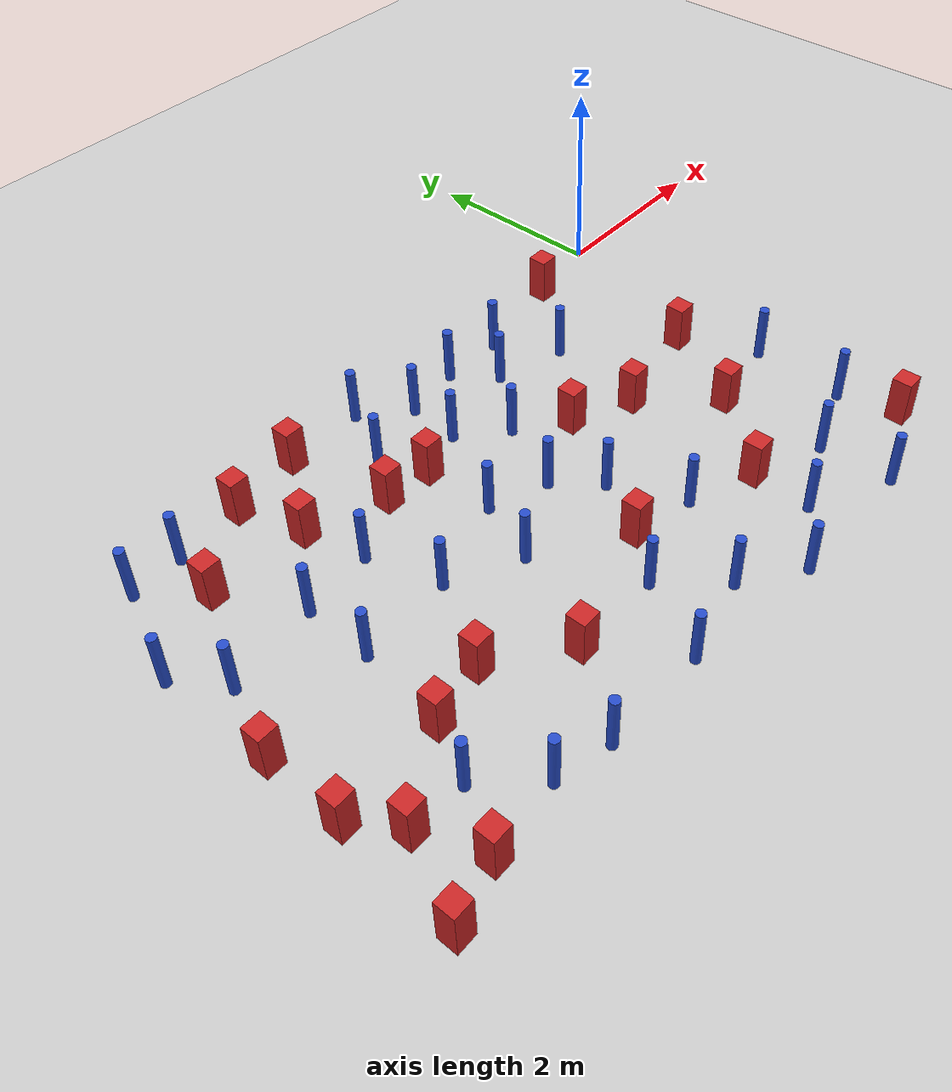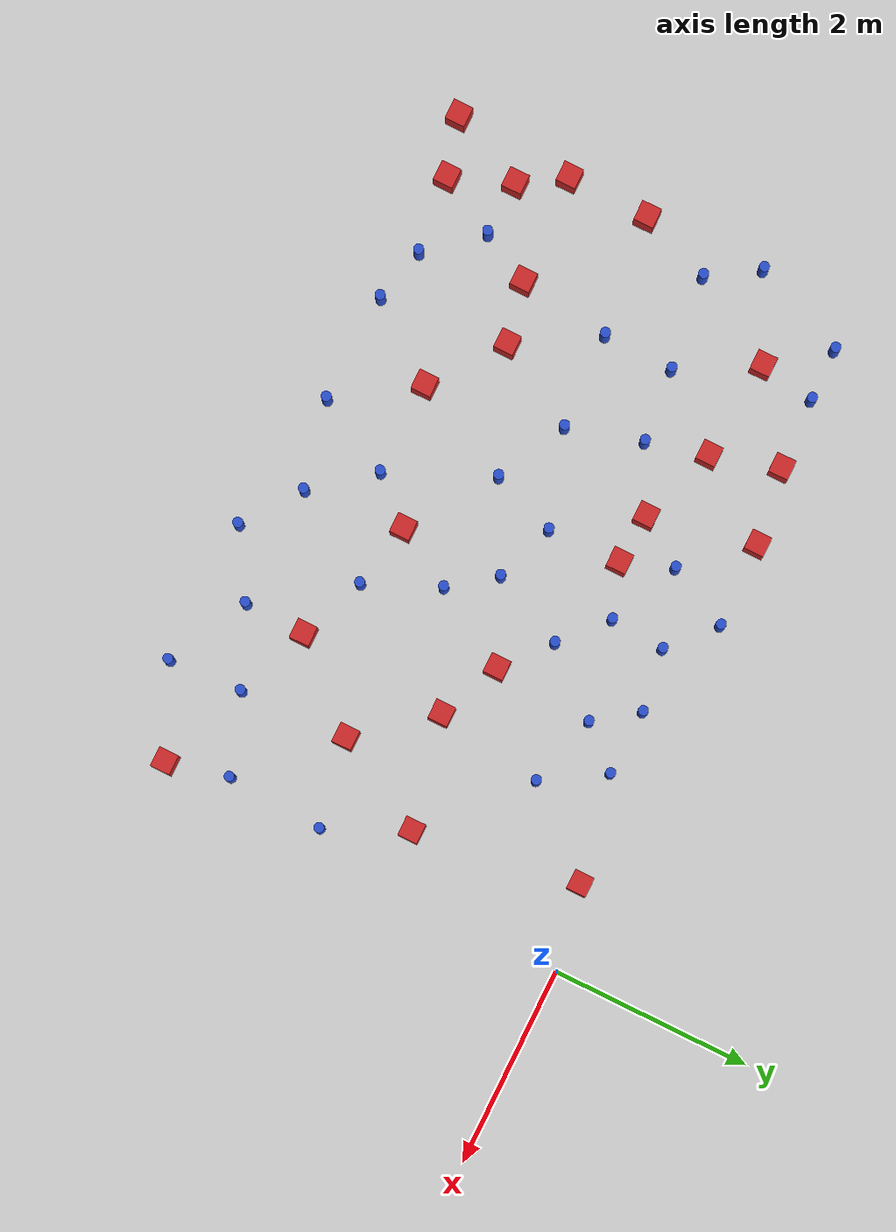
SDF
<sdf version="1.6">
 <world name="default">
  <model name="ground_plane">
   <static>1</static>
   <link name="link">
    <collision name="collision">
     <geometry><plane><normal>0 0 1</normal><size>100 100</size></plane></geometry>
     <surface><friction><ode><mu>100</mu><mu2>50</mu2></ode></friction></surface>
    </collision>
    <visual name="visual">
     <cast_shadows>0</cast_shadows>
     <geometry><plane><normal>0 0 1</normal><size>100 100</size></plane></geometry>
     <material>
      <ambient>1.0 1.0 1.0 1.0</ambient>
      <diffuse>0.8 0.8 0.8 1.0</diffuse>
      <specular>0.01 0.01 0.01 1.000000</specular>
     </material>
    </visual>
   </link>
  </model>
  <model name="square_post_obstacle0">
   <static>true</static>
   <pose>-6.79365163109 -2.37966467392 -6.11067671241e-07 -5.50515727128e-06 -8.79689657224e-07 2.37013304536e-05</pose>
   <link name="link">
    <pose>0 0 0.25 0 -0 0</pose>
    <inertial>
     <mass>100</mass>
     <inertia>
      <ixx>0.166667</ixx>
      <ixy>0</ixy>
      <ixz>0</ixz>
      <iyy>0.166667</iyy>
      <iyz>0</iyz>
      <izz>0.166667</izz>
     </inertia>
    </inertial>
    <collision name="collision"><geometry><box><size>.2 .2 .5</size></box></geometry></collision>
    <visual name="visual">
     <geometry><box><size>.2 .2 .5</size></box></geometry>
     <material>
      <script><name>Gazebo/Red</name><uri>file://media/materials/scripts/gazebo.material</uri></script>
     </material>
    </visual>
   </link>
  </model>
  <model name="square_post_obstacle2">
   <static>true</static>
   <pose>-4.2392469503 -1.13895897655 -6.11067671241e-07 -5.50515727128e-06 -8.79689657224e-07 2.37013304536e-05</pose>
   <link name="link">
    <pose>0 0 0.25 0 -0 0</pose>
    <inertial>
     <mass>100</mass>
     <inertia>
      <ixx>0.166667</ixx>
      <ixy>0</ixy>
      <ixz>0</ixz>
      <iyy>0.166667</iyy>
      <iyz>0</iyz>
      <izz>0.166667</izz>
     </inertia>
    </inertial>
    <collision name="collision"><geometry><box><size>.2 .2 .5</size></box></geometry></collision>
    <visual name="visual">
     <geometry><box><size>.2 .2 .5</size></box></geometry>
     <material>
      <script><name>Gazebo/Red</name><uri>file://media/materials/scripts/gazebo.material</uri></script>
     </material>
    </visual>
   </link>
  </model>
  <model name="square_post_obstacle5">
   <static>true</static>
   <pose>-0.597007786753 -1.81232864368 -6.11067671241e-07 -5.50515727128e-06 -8.79689657224e-07 2.37013304536e-05</pose>
   <link name="link">
    <pose>0 0 0.25 0 -0 0</pose>
    <inertial>
     <mass>100</mass>
     <inertia>
      <ixx>0.166667</ixx>
      <ixy>0</ixy>
      <ixz>0</ixz>
      <iyy>0.166667</iyy>
      <iyz>0</iyz>
      <izz>0.166667</izz>
     </inertia>
    </inertial>
    <collision name="collision"><geometry><box><size>.2 .2 .5</size></box></geometry></collision>
    <visual name="visual">
     <geometry><box><size>.2 .2 .5</size></box></geometry>
     <material>
      <script><name>Gazebo/Red</name><uri>file://media/materials/scripts/gazebo.material</uri></script>
     </material>
    </visual>
   </link>
  </model>
  <model name="square_post_obstacle7">
   <static>true</static>
   <pose>-4.43367953176 -3.56172683347 -6.11067671241e-07 -5.50515727128e-06 -8.79689657224e-07 2.37013304536e-05</pose>
   <link name="link">
    <pose>0 0 0.25 0 -0 0</pose>
    <inertial>
     <mass>100</mass>
     <inertia>
      <ixx>0.166667</ixx>
      <ixy>0</ixy>
      <ixz>0</ixz>
      <iyy>0.166667</iyy>
      <iyz>0</iyz>
      <izz>0.166667</izz>
     </inertia>
    </inertial>
    <collision name="collision"><geometry><box><size>.2 .2 .5</size></box></geometry></collision>
    <visual name="visual">
     <geometry><box><size>.2 .2 .5</size></box></geometry>
     <material>
      <script><name>Gazebo/Red</name><uri>file://media/materials/scripts/gazebo.material</uri></script>
     </material>
    </visual>
   </link>
  </model>
  <model name="pole_obstacle6">
   <static>true</static>
   <pose>-4.86197490382 -1.45907434639 -9.47619616065e-06 5.49618799738e-07 2.36310414071e-07 -1.55090534796e-07</pose>
   <link name="link">
    <pose>0 0 0.3 0 -0 0</pose>
    <inertial>
     <mass>1</mass>
     <inertia><ixx>0.145833</ixx><ixy>0</ixy><ixz>0</ixz><iyy>0.145833</iyy><iyz>0</iyz><izz>0.125</izz></inertia>
    </inertial>
    <collision name="collision">
     <geometry><cylinder><radius>0.05</radius><length>.6</length></cylinder></geometry>
    </collision>
    <visual name="visual">
     <geometry><cylinder><radius>0.05</radius><length>.6</length></cylinder></geometry>
     <material>
      <script><name>Gazebo/Blue</name><uri>file://media/materials/scripts/gazebo.material</uri></script>
     </material>
    </visual>
   </link>
  </model>
  <model name="square_post_obstacle16">
   <static>true</static>
   <pose>-6.29992434716 -4.24559506503 -6.11067671241e-07 -5.50515727128e-06 -8.79689657224e-07 2.37013304536e-05</pose>
   <link name="link">
    <pose>0 0 0.25 0 -0 0</pose>
    <inertial>
     <mass>100</mass>
     <inertia>
      <ixx>0.166667</ixx>
      <ixy>0</ixy>
      <ixz>0</ixz>
      <iyy>0.166667</iyy>
      <iyz>0</iyz>
      <izz>0.166667</izz>
     </inertia>
    </inertial>
    <collision name="collision"><geometry><box><size>.2 .2 .5</size></box></geometry></collision>
    <visual name="visual">
     <geometry><box><size>.2 .2 .5</size></box></geometry>
     <material>
      <script><name>Gazebo/Red</name><uri>file://media/materials/scripts/gazebo.material</uri></script>
     </material>
    </visual>
   </link>
  </model>
  <model name="pole_obstacle9">
   <static>true</static>
   <pose>-0.22944135859 -2.60055739995 -9.4761961606e-06 5.49618799729e-07 2.36310413995e-07 -1.55090534826e-07</pose>
   <link name="link">
    <pose>0 0 0.3 0 -0 0</pose>
    <inertial>
     <mass>1</mass>
     <inertia><ixx>0.145833</ixx><ixy>0</ixy><ixz>0</ixz><iyy>0.145833</iyy><iyz>0</iyz><izz>0.125</izz></inertia>
    </inertial>
    <collision name="collision">
     <geometry><cylinder><radius>0.05</radius><length>.6</length></cylinder></geometry>
    </collision>
    <visual name="visual">
     <geometry><cylinder><radius>0.05</radius><length>.6</length></cylinder></geometry>
     <material>
      <script><name>Gazebo/Blue</name><uri>file://media/materials/scripts/gazebo.material</uri></script>
     </material>
    </visual>
   </link>
  </model>
  <model name="square_post_obstacle17">
   <static>true</static>
   <pose>-6.01088247387 -0.774021291029 -6.11067671241e-07 -5.50515727128e-06 -8.79689657224e-07 2.37013304536e-05</pose>
   <link name="link">
    <pose>0 0 0.25 0 -0 0</pose>
    <inertial>
     <mass>100</mass>
     <inertia>
      <ixx>0.166667</ixx>
      <ixy>0</ixy>
      <ixz>0</ixz>
      <iyy>0.166667</iyy>
      <iyz>0</iyz>
      <izz>0.166667</izz>
     </inertia>
    </inertial>
    <collision name="collision"><geometry><box><size>.2 .2 .5</size></box></geometry></collision>
    <visual name="visual">
     <geometry><box><size>.2 .2 .5</size></box></geometry>
     <material>
      <script><name>Gazebo/Red</name><uri>file://media/materials/scripts/gazebo.material</uri></script>
     </material>
    </visual>
   </link>
  </model>
  <model name="square_post_obstacle19">
   <static>true</static>
   <pose>-6.87318926064 -4.40317310177 -6.11067671241e-07 -5.50515727128e-06 -8.79689657224e-07 2.37013304536e-05</pose>
   <link name="link">
    <pose>0 0 0.25 0 -0 0</pose>
    <inertial>
     <mass>100</mass>
     <inertia>
      <ixx>0.166667</ixx>
      <ixy>0</ixy>
      <ixz>0</ixz>
      <iyy>0.166667</iyy>
      <iyz>0</iyz>
      <izz>0.166667</izz>
     </inertia>
    </inertial>
    <collision name="collision"><geometry><box><size>.2 .2 .5</size></box></geometry></collision>
    <visual name="visual">
     <geometry><box><size>.2 .2 .5</size></box></geometry>
     <material>
      <script><name>Gazebo/Red</name><uri>file://media/materials/scripts/gazebo.material</uri></script>
     </material>
    </visual>
   </link>
  </model>
  <model name="pole_obstacle12">
   <static>true</static>
   <pose>-2.7788089134 -1.38238194871 -9.47619616065e-06 5.49618799737e-07 2.36310414072e-07 -1.55090534793e-07</pose>
   <link name="link">
    <pose>0 0 0.3 0 -0 0</pose>
    <inertial>
     <mass>1</mass>
     <inertia><ixx>0.145833</ixx><ixy>0</ixy><ixz>0</ixz><iyy>0.145833</iyy><iyz>0</iyz><izz>0.125</izz></inertia>
    </inertial>
    <collision name="collision">
     <geometry><cylinder><radius>0.05</radius><length>.6</length></cylinder></geometry>
    </collision>
    <visual name="visual">
     <geometry><cylinder><radius>0.05</radius><length>.6</length></cylinder></geometry>
     <material>
      <script><name>Gazebo/Blue</name><uri>file://media/materials/scripts/gazebo.material</uri></script>
     </material>
    </visual>
   </link>
  </model>
  <model name="pole_obstacle16">
   <static>true</static>
   <pose>-3.03292474364 -4.14397982921 -9.47619616065e-06 5.49618799738e-07 2.3631041406e-07 -1.55090534801e-07</pose>
   <link name="link">
    <pose>0 0 0.3 0 -0 0</pose>
    <inertial>
     <mass>1</mass>
     <inertia><ixx>0.145833</ixx><ixy>0</ixy><ixz>0</ixz><iyy>0.145833</iyy><iyz>0</iyz><izz>0.125</izz></inertia>
    </inertial>
    <collision name="collision">
     <geometry><cylinder><radius>0.05</radius><length>.6</length></cylinder></geometry>
    </collision>
    <visual name="visual">
     <geometry><cylinder><radius>0.05</radius><length>.6</length></cylinder></geometry>
     <material>
      <script><name>Gazebo/Blue</name><uri>file://media/materials/scripts/gazebo.material</uri></script>
     </material>
    </visual>
   </link>
  </model>
  <model name="square_post_obstacle29">
   <static>true</static>
   <pose>-2.330576154 -1.76923611271 -6.11067671241e-07 -5.50515727128e-06 -8.79689657224e-07 2.37013304536e-05</pose>
   <link name="link">
    <pose>0 0 0.25 0 -0 0</pose>
    <inertial>
     <mass>100</mass>
     <inertia>
      <ixx>0.166667</ixx>
      <ixy>0</ixy>
      <ixz>0</ixz>
      <iyy>0.166667</iyy>
      <iyz>0</iyz>
      <izz>0.166667</izz>
     </inertia>
    </inertial>
    <collision name="collision"><geometry><box><size>.2 .2 .5</size></box></geometry></collision>
    <visual name="visual">
     <geometry><box><size>.2 .2 .5</size></box></geometry>
     <material>
      <script><name>Gazebo/Red</name><uri>file://media/materials/scripts/gazebo.material</uri></script>
     </material>
    </visual>
   </link>
  </model>
  <model name="square_post_obstacle32">
   <static>true</static>
   <pose>-0.154091676477 -4.18583389354 -6.11067671241e-07 -5.50515727128e-06 -8.79689657224e-07 2.37013304536e-05</pose>
   <link name="link">
    <pose>0 0 0.25 0 -0 0</pose>
    <inertial>
     <mass>100</mass>
     <inertia>
      <ixx>0.166667</ixx>
      <ixy>0</ixy>
      <ixz>0</ixz>
      <iyy>0.166667</iyy>
      <iyz>0</iyz>
      <izz>0.166667</izz>
     </inertia>
    </inertial>
    <collision name="collision"><geometry><box><size>.2 .2 .5</size></box></geometry></collision>
    <visual name="visual">
     <geometry><box><size>.2 .2 .5</size></box></geometry>
     <material>
      <script><name>Gazebo/Red</name><uri>file://media/materials/scripts/gazebo.material</uri></script>
     </material>
    </visual>
   </link>
  </model>
  <model name="pole_obstacle28">
   <static>true</static>
   <pose>-0.289785393701 -3.56984879872 -9.47619616065e-06 5.49618799738e-07 2.36310414071e-07 -1.55090534795e-07</pose>
   <link name="link">
    <pose>0 0 0.3 0 -0 0</pose>
    <inertial>
     <mass>1</mass>
     <inertia><ixx>0.145833</ixx><ixy>0</ixy><ixz>0</ixz><iyy>0.145833</iyy><iyz>0</iyz><izz>0.125</izz></inertia>
    </inertial>
    <collision name="collision">
     <geometry><cylinder><radius>0.05</radius><length>.6</length></cylinder></geometry>
    </collision>
    <visual name="visual">
     <geometry><cylinder><radius>0.05</radius><length>.6</length></cylinder></geometry>
     <material>
      <script><name>Gazebo/Blue</name><uri>file://media/materials/scripts/gazebo.material</uri></script>
     </material>
    </visual>
   </link>
  </model>
  <model name="pole_obstacle32">
   <static>true</static>
   <pose>-6.43493447278 -0.231366532848 -9.47619616065e-06 5.49618799737e-07 2.36310414066e-07 -1.55090534799e-07</pose>
   <link name="link">
    <pose>0 0 0.3 0 -0 0</pose>
    <inertial>
     <mass>1</mass>
     <inertia><ixx>0.145833</ixx><ixy>0</ixy><ixz>0</ixz><iyy>0.145833</iyy><iyz>0</iyz><izz>0.125</izz></inertia>
    </inertial>
    <collision name="collision">
     <geometry><cylinder><radius>0.05</radius><length>.6</length></cylinder></geometry>
    </collision>
    <visual name="visual">
     <geometry><cylinder><radius>0.05</radius><length>.6</length></cylinder></geometry>
     <material>
      <script><name>Gazebo/Blue</name><uri>file://media/materials/scripts/gazebo.material</uri></script>
     </material>
    </visual>
   </link>
  </model>
  <model name="pole_obstacle34">
   <static>true</static>
   <pose>-2.47145228042 -3.27846157827 -9.47619616065e-06 5.49618799737e-07 2.36310414051e-07 -1.55090534807e-07</pose>
   <link name="link">
    <pose>0 0 0.3 0 -0 0</pose>
    <inertial>
     <mass>1</mass>
     <inertia><ixx>0.145833</ixx><ixy>0</ixy><ixz>0</ixz><iyy>0.145833</iyy><iyz>0</iyz><izz>0.125</izz></inertia>
    </inertial>
    <collision name="collision">
     <geometry><cylinder><radius>0.05</radius><length>.6</length></cylinder></geometry>
    </collision>
    <visual name="visual">
     <geometry><cylinder><radius>0.05</radius><length>.6</length></cylinder></geometry>
     <material>
      <script><name>Gazebo/Blue</name><uri>file://media/materials/scripts/gazebo.material</uri></script>
     </material>
    </visual>
   </link>
  </model>
  <model name="pole_obstacle35">
   <static>true</static>
   <pose>-3.91542298515 -0.672027228942 -9.47619616065e-06 5.49618799738e-07 2.36310414075e-07 -1.55090534793e-07</pose>
   <link name="link">
    <pose>0 0 0.3 0 -0 0</pose>
    <inertial>
     <mass>1</mass>
     <inertia><ixx>0.145833</ixx><ixy>0</ixy><ixz>0</ixz><iyy>0.145833</iyy><iyz>0</iyz><izz>0.125</izz></inertia>
    </inertial>
    <collision name="collision">
     <geometry><cylinder><radius>0.05</radius><length>.6</length></cylinder></geometry>
    </collision>
    <visual name="visual">
     <geometry><cylinder><radius>0.05</radius><length>.6</length></cylinder></geometry>
     <material>
      <script><name>Gazebo/Blue</name><uri>file://media/materials/scripts/gazebo.material</uri></script>
     </material>
    </visual>
   </link>
  </model>
  <model name="pole_obstacle37">
   <static>true</static>
   <pose>-2.25235040483 -0.76699254131 -9.47619616065e-06 5.49618799738e-07 2.36310414075e-07 -1.55090534793e-07</pose>
   <link name="link">
    <pose>0 0 0.3 0 -0 0</pose>
    <inertial>
     <mass>1</mass>
     <inertia><ixx>0.145833</ixx><ixy>0</ixy><ixz>0</ixz><iyy>0.145833</iyy><iyz>0</iyz><izz>0.125</izz></inertia>
    </inertial>
    <collision name="collision">
     <geometry><cylinder><radius>0.05</radius><length>.6</length></cylinder></geometry>
    </collision>
    <visual name="visual">
     <geometry><cylinder><radius>0.05</radius><length>.6</length></cylinder></geometry>
     <material>
      <script><name>Gazebo/Blue</name><uri>file://media/materials/scripts/gazebo.material</uri></script>
     </material>
    </visual>
   </link>
  </model>
  <model name="pole_obstacle42">
   <static>true</static>
   <pose>-3.50284827533 -3.57272188242 -9.47619616065e-06 5.49618799737e-07 2.36310414067e-07 -1.55090534797e-07</pose>
   <link name="link">
    <pose>0 0 0.3 0 -0 0</pose>
    <inertial>
     <mass>1</mass>
     <inertia><ixx>0.145833</ixx><ixy>0</ixy><ixz>0</ixz><iyy>0.145833</iyy><iyz>0</iyz><izz>0.125</izz></inertia>
    </inertial>
    <collision name="collision">
     <geometry><cylinder><radius>0.05</radius><length>.6</length></cylinder></geometry>
    </collision>
    <visual name="visual">
     <geometry><cylinder><radius>0.05</radius><length>.6</length></cylinder></geometry>
     <material>
      <script><name>Gazebo/Blue</name><uri>file://media/materials/scripts/gazebo.material</uri></script>
     </material>
    </visual>
   </link>
  </model>
  <model name="square_post_obstacle40">
   <static>true</static>
   <pose>-6.53275924271 -3.64013052951 -6.11067671241e-07 -5.50515727128e-06 -8.79689657224e-07 2.37013304536e-05</pose>
   <link name="link">
    <pose>0 0 0.25 0 -0 0</pose>
    <inertial>
     <mass>100</mass>
     <inertia>
      <ixx>0.166667</ixx>
      <ixy>0</ixy>
      <ixz>0</ixz>
      <iyy>0.166667</iyy>
      <iyz>0</iyz>
      <izz>0.166667</izz>
     </inertia>
    </inertial>
    <collision name="collision"><geometry><box><size>.2 .2 .5</size></box></geometry></collision>
    <visual name="visual">
     <geometry><box><size>.2 .2 .5</size></box></geometry>
     <material>
      <script><name>Gazebo/Red</name><uri>file://media/materials/scripts/gazebo.material</uri></script>
     </material>
    </visual>
   </link>
  </model>
  <model name="square_post_obstacle54">
   <static>true</static>
   <pose>-1.11307281681 -2.75795405265 -6.11067671241e-07 -5.50515727128e-06 -8.79689657224e-07 2.37013304536e-05</pose>
   <link name="link">
    <pose>0 0 0.25 0 -0 0</pose>
    <inertial>
     <mass>100</mass>
     <inertia>
      <ixx>0.166667</ixx>
      <ixy>0</ixy>
      <ixz>0</ixz>
      <iyy>0.166667</iyy>
      <iyz>0</iyz>
      <izz>0.166667</izz>
     </inertia>
    </inertial>
    <collision name="collision"><geometry><box><size>.2 .2 .5</size></box></geometry></collision>
    <visual name="visual">
     <geometry><box><size>.2 .2 .5</size></box></geometry>
     <material>
      <script><name>Gazebo/Red</name><uri>file://media/materials/scripts/gazebo.material</uri></script>
     </material>
    </visual>
   </link>
  </model>
  <model name="square_post_obstacle56">
   <static>true</static>
   <pose>-3.73964808594 -1.17302098692 -6.11067671241e-07 -5.50515727128e-06 -8.79689657224e-07 2.37013304536e-05</pose>
   <link name="link">
    <pose>0 0 0.25 0 -0 0</pose>
    <inertial>
     <mass>100</mass>
     <inertia>
      <ixx>0.166667</ixx>
      <ixy>0</ixy>
      <ixz>0</ixz>
      <iyy>0.166667</iyy>
      <iyz>0</iyz>
      <izz>0.166667</izz>
     </inertia>
    </inertial>
    <collision name="collision"><geometry><box><size>.2 .2 .5</size></box></geometry></collision>
    <visual name="visual">
     <geometry><box><size>.2 .2 .5</size></box></geometry>
     <material>
      <script><name>Gazebo/Red</name><uri>file://media/materials/scripts/gazebo.material</uri></script>
     </material>
    </visual>
   </link>
  </model>
  <model name="pole_obstacle56">
   <static>true</static>
   <pose>-3.71279661261 -1.90455418314 -9.47619616065e-06 5.49618799737e-07 2.3631041403e-07 -1.5509053482e-07</pose>
   <link name="link">
    <pose>0 0 0.3 0 -0 0</pose>
    <inertial>
     <mass>1</mass>
     <inertia><ixx>0.145833</ixx><ixy>0</ixy><ixz>0</ixz><iyy>0.145833</iyy><iyz>0</iyz><izz>0.125</izz></inertia>
    </inertial>
    <collision name="collision">
     <geometry><cylinder><radius>0.05</radius><length>.6</length></cylinder></geometry>
    </collision>
    <visual name="visual">
     <geometry><cylinder><radius>0.05</radius><length>.6</length></cylinder></geometry>
     <material>
      <script><name>Gazebo/Blue</name><uri>file://media/materials/scripts/gazebo.material</uri></script>
     </material>
    </visual>
   </link>
  </model>
  <model name="pole_obstacle63">
   <static>true</static>
   <pose>-1.02903352181 -4.57635606215 -9.47619616065e-06 5.49618799737e-07 2.36310414062e-07 -1.55090534799e-07</pose>
   <link name="link">
    <pose>0 0 0.3 0 -0 0</pose>
    <inertial>
     <mass>1</mass>
     <inertia><ixx>0.145833</ixx><ixy>0</ixy><ixz>0</ixz><iyy>0.145833</iyy><iyz>0</iyz><izz>0.125</izz></inertia>
    </inertial>
    <collision name="collision">
     <geometry><cylinder><radius>0.05</radius><length>.6</length></cylinder></geometry>
    </collision>
    <visual name="visual">
     <geometry><cylinder><radius>0.05</radius><length>.6</length></cylinder></geometry>
     <material>
      <script><name>Gazebo/Blue</name><uri>file://media/materials/scripts/gazebo.material</uri></script>
     </material>
    </visual>
   </link>
  </model>
  <model name="square_post_obstacle72">
   <static>true</static>
   <pose>-5.21378145394 -0.18885696707 -6.11067671241e-07 -5.50515727128e-06 -8.79689657224e-07 2.37013304536e-05</pose>
   <link name="link">
    <pose>0 0 0.25 0 -0 0</pose>
    <inertial>
     <mass>100</mass>
     <inertia>
      <ixx>0.166667</ixx>
      <ixy>0</ixy>
      <ixz>0</ixz>
      <iyy>0.166667</iyy>
      <iyz>0</iyz>
      <izz>0.166667</izz>
     </inertia>
    </inertial>
    <collision name="collision"><geometry><box><size>.2 .2 .5</size></box></geometry></collision>
    <visual name="visual">
     <geometry><box><size>.2 .2 .5</size></box></geometry>
     <material>
      <script><name>Gazebo/Red</name><uri>file://media/materials/scripts/gazebo.material</uri></script>
     </material>
    </visual>
   </link>
  </model>
  <model name="pole_obstacle75">
   <static>true</static>
   <pose>-3.90321730316 -4.3350528986 -9.4761961606e-06 5.49618799729e-07 2.36310414006e-07 -1.55090534822e-07</pose>
   <link name="link">
    <pose>0 0 0.3 0 -0 0</pose>
    <inertial>
     <mass>1</mass>
     <inertia><ixx>0.145833</ixx><ixy>0</ixy><ixz>0</ixz><iyy>0.145833</iyy><iyz>0</iyz><izz>0.125</izz></inertia>
    </inertial>
    <collision name="collision">
     <geometry><cylinder><radius>0.05</radius><length>.6</length></cylinder></geometry>
    </collision>
    <visual name="visual">
     <geometry><cylinder><radius>0.05</radius><length>.6</length></cylinder></geometry>
     <material>
      <script><name>Gazebo/Blue</name><uri>file://media/materials/scripts/gazebo.material</uri></script>
     </material>
    </visual>
   </link>
  </model>
  <model name="pole_obstacle79">
   <static>true</static>
   <pose>-4.98861191059 -4.30408736941 -9.47619616065e-06 5.49618799737e-07 2.36310414037e-07 -1.55090534814e-07</pose>
   <link name="link">
    <pose>0 0 0.3 0 -0 0</pose>
    <inertial>
     <mass>1</mass>
     <inertia><ixx>0.145833</ixx><ixy>0</ixy><ixz>0</ixz><iyy>0.145833</iyy><iyz>0</iyz><izz>0.125</izz></inertia>
    </inertial>
    <collision name="collision">
     <geometry><cylinder><radius>0.05</radius><length>.6</length></cylinder></geometry>
    </collision>
    <visual name="visual">
     <geometry><cylinder><radius>0.05</radius><length>.6</length></cylinder></geometry>
     <material>
      <script><name>Gazebo/Blue</name><uri>file://media/materials/scripts/gazebo.material</uri></script>
     </material>
    </visual>
   </link>
  </model>
  <model name="pole_obstacle83">
   <static>true</static>
   <pose>-1.06622155213 -3.83765173646 -9.47619616065e-06 5.49618799737e-07 2.36310414062e-07 -1.55090534798e-07</pose>
   <link name="link">
    <pose>0 0 0.3 0 -0 0</pose>
    <inertial>
     <mass>1</mass>
     <inertia><ixx>0.145833</ixx><ixy>0</ixy><ixz>0</ixz><iyy>0.145833</iyy><iyz>0</iyz><izz>0.125</izz></inertia>
    </inertial>
    <collision name="collision">
     <geometry><cylinder><radius>0.05</radius><length>.6</length></cylinder></geometry>
    </collision>
    <visual name="visual">
     <geometry><cylinder><radius>0.05</radius><length>.6</length></cylinder></geometry>
     <material>
      <script><name>Gazebo/Blue</name><uri>file://media/materials/scripts/gazebo.material</uri></script>
     </material>
    </visual>
   </link>
  </model>
  <model name="pole_obstacle84">
   <static>true</static>
   <pose>-3.61444891288 -0.0518626555881 -9.47619616065e-06 5.49618799738e-07 2.36310414077e-07 -1.55090534792e-07</pose>
   <link name="link">
    <pose>0 0 0.3 0 -0 0</pose>
    <inertial>
     <mass>1</mass>
     <inertia><ixx>0.145833</ixx><ixy>0</ixy><ixz>0</ixz><iyy>0.145833</iyy><iyz>0</iyz><izz>0.125</izz></inertia>
    </inertial>
    <collision name="collision">
     <geometry><cylinder><radius>0.05</radius><length>.6</length></cylinder></geometry>
    </collision>
    <visual name="visual">
     <geometry><cylinder><radius>0.05</radius><length>.6</length></cylinder></geometry>
     <material>
      <script><name>Gazebo/Blue</name><uri>file://media/materials/scripts/gazebo.material</uri></script>
     </material>
    </visual>
   </link>
  </model>
  <model name="pole_obstacle86">
   <static>true</static>
   <pose>-2.55986904602 -0.350726312966 -9.47619616065e-06 5.49618799738e-07 2.36310414074e-07 -1.55090534794e-07</pose>
   <link name="link">
    <pose>0 0 0.3 0 -0 0</pose>
    <inertial>
     <mass>1</mass>
     <inertia><ixx>0.145833</ixx><ixy>0</ixy><ixz>0</ixz><iyy>0.145833</iyy><iyz>0</iyz><izz>0.125</izz></inertia>
    </inertial>
    <collision name="collision">
     <geometry><cylinder><radius>0.05</radius><length>.6</length></cylinder></geometry>
    </collision>
    <visual name="visual">
     <geometry><cylinder><radius>0.05</radius><length>.6</length></cylinder></geometry>
     <material>
      <script><name>Gazebo/Blue</name><uri>file://media/materials/scripts/gazebo.material</uri></script>
     </material>
    </visual>
   </link>
  </model>
  <model name="pole_obstacle89">
   <static>true</static>
   <pose>-4.65138364975 -2.20225454791 -9.47619616065e-06 5.49618799738e-07 2.36310414051e-07 -1.55090534805e-07</pose>
   <link name="link">
    <pose>0 0 0.3 0 -0 0</pose>
    <inertial>
     <mass>1</mass>
     <inertia><ixx>0.145833</ixx><ixy>0</ixy><ixz>0</ixz><iyy>0.145833</iyy><iyz>0</iyz><izz>0.125</izz></inertia>
    </inertial>
    <collision name="collision">
     <geometry><cylinder><radius>0.05</radius><length>.6</length></cylinder></geometry>
    </collision>
    <visual name="visual">
     <geometry><cylinder><radius>0.05</radius><length>.6</length></cylinder></geometry>
     <material>
      <script><name>Gazebo/Blue</name><uri>file://media/materials/scripts/gazebo.material</uri></script>
     </material>
    </visual>
   </link>
  </model>
  <model name="pole_obstacle96">
   <static>true</static>
   <pose>-1.90054986948 -0.369424221788 -9.47619616065e-06 5.49618799737e-07 2.36310414064e-07 -1.55090534799e-07</pose>
   <link name="link">
    <pose>0 0 0.3 0 -0 0</pose>
    <inertial>
     <mass>1</mass>
     <inertia><ixx>0.145833</ixx><ixy>0</ixy><ixz>0</ixz><iyy>0.145833</iyy><iyz>0</iyz><izz>0.125</izz></inertia>
    </inertial>
    <collision name="collision">
     <geometry><cylinder><radius>0.05</radius><length>.6</length></cylinder></geometry>
    </collision>
    <visual name="visual">
     <geometry><cylinder><radius>0.05</radius><length>.6</length></cylinder></geometry>
     <material>
      <script><name>Gazebo/Blue</name><uri>file://media/materials/scripts/gazebo.material</uri></script>
     </material>
    </visual>
   </link>
  </model>
  <model name="square_post_obstacle110">
   <static>true</static>
   <pose>-5.02109420908 -0.860228562525 -6.11067671241e-07 -5.50515727128e-06 -8.79689657224e-07 2.37013304536e-05</pose>
   <link name="link">
    <pose>0 0 0.25 0 -0 0</pose>
    <inertial>
     <mass>100</mass>
     <inertia>
      <ixx>0.166667</ixx>
      <ixy>0</ixy>
      <ixz>0</ixz>
      <iyy>0.166667</iyy>
      <iyz>0</iyz>
      <izz>0.166667</izz>
     </inertia>
    </inertial>
    <collision name="collision"><geometry><box><size>.2 .2 .5</size></box></geometry></collision>
    <visual name="visual">
     <geometry><box><size>.2 .2 .5</size></box></geometry>
     <material>
      <script><name>Gazebo/Red</name><uri>file://media/materials/scripts/gazebo.material</uri></script>
     </material>
    </visual>
   </link>
  </model>
  <model name="pole_obstacle121">
   <static>true</static>
   <pose>-5.60375531675 -2.24166722646 -9.47619616065e-06 5.49618799738e-07 2.36310414051e-07 -1.55090534805e-07</pose>
   <link name="link">
    <pose>0 0 0.3 0 -0 0</pose>
    <inertial>
     <mass>1</mass>
     <inertia><ixx>0.145833</ixx><ixy>0</ixy><ixz>0</ixz><iyy>0.145833</iyy><iyz>0</iyz><izz>0.125</izz></inertia>
    </inertial>
    <collision name="collision">
     <geometry><cylinder><radius>0.05</radius><length>.6</length></cylinder></geometry>
    </collision>
    <visual name="visual">
     <geometry><cylinder><radius>0.05</radius><length>.6</length></cylinder></geometry>
     <material>
      <script><name>Gazebo/Blue</name><uri>file://media/materials/scripts/gazebo.material</uri></script>
     </material>
    </visual>
   </link>
  </model>
  <model name="pole_obstacle122">
   <static>true</static>
   <pose>-5.98223646714 -3.66260465675 -9.47619616065e-06 5.49618799738e-07 2.36310414051e-07 -1.55090534805e-07</pose>
   <link name="link">
    <pose>0 0 0.3 0 -0 0</pose>
    <inertial>
     <mass>1</mass>
     <inertia><ixx>0.145833</ixx><ixy>0</ixy><ixz>0</ixz><iyy>0.145833</iyy><iyz>0</iyz><izz>0.125</izz></inertia>
    </inertial>
    <collision name="collision">
     <geometry><cylinder><radius>0.05</radius><length>.6</length></cylinder></geometry>
    </collision>
    <visual name="visual">
     <geometry><cylinder><radius>0.05</radius><length>.6</length></cylinder></geometry>
     <material>
      <script><name>Gazebo/Blue</name><uri>file://media/materials/scripts/gazebo.material</uri></script>
     </material>
    </visual>
   </link>
  </model>
  <model name="square_post_obstacle124">
   <static>true</static>
   <pose>-4.45957317774 -0.0765150532961 -6.11067671241e-07 -5.50515727128e-06 -8.79689657224e-07 2.37013304536e-05</pose>
   <link name="link">
    <pose>0 0 0.25 0 -0 0</pose>
    <inertial>
     <mass>100</mass>
     <inertia>
      <ixx>0.166667</ixx>
      <ixy>0</ixy>
      <ixz>0</ixz>
      <iyy>0.166667</iyy>
      <iyz>0</iyz>
      <izz>0.166667</izz>
     </inertia>
    </inertial>
    <collision name="collision"><geometry><box><size>.2 .2 .5</size></box></geometry></collision>
    <visual name="visual">
     <geometry><box><size>.2 .2 .5</size></box></geometry>
     <material>
      <script><name>Gazebo/Red</name><uri>file://media/materials/scripts/gazebo.material</uri></script>
     </material>
    </visual>
   </link>
  </model>
  <model name="pole_obstacle140">
   <static>true</static>
   <pose>-1.82941657323 -4.1632960777 -9.47619616065e-06 5.49618799737e-07 2.36310414061e-07 -1.550905348e-07</pose>
   <link name="link">
    <pose>0 0 0.3 0 -0 0</pose>
    <inertial>
     <mass>1</mass>
     <inertia><ixx>0.145833</ixx><ixy>0</ixy><ixz>0</ixz><iyy>0.145833</iyy><iyz>0</iyz><izz>0.125</izz></inertia>
    </inertial>
    <collision name="collision">
     <geometry><cylinder><radius>0.05</radius><length>.6</length></cylinder></geometry>
    </collision>
    <visual name="visual">
     <geometry><cylinder><radius>0.05</radius><length>.6</length></cylinder></geometry>
     <material>
      <script><name>Gazebo/Blue</name><uri>file://media/materials/scripts/gazebo.material</uri></script>
     </material>
    </visual>
   </link>
  </model>
  <model name="square_post_obstacle131">
   <static>true</static>
   <pose>-0.846398369994 -0.166675467409 -6.11067671241e-07 -5.50515727128e-06 -8.79689657224e-07 2.37013304536e-05</pose>
   <link name="link">
    <pose>0 0 0.25 0 -0 0</pose>
    <inertial>
     <mass>100</mass>
     <inertia>
      <ixx>0.166667</ixx>
      <ixy>0</ixy>
      <ixz>0</ixz>
      <iyy>0.166667</iyy>
      <iyz>0</iyz>
      <izz>0.166667</izz>
     </inertia>
    </inertial>
    <collision name="collision"><geometry><box><size>.2 .2 .5</size></box></geometry></collision>
    <visual name="visual">
     <geometry><box><size>.2 .2 .5</size></box></geometry>
     <material>
      <script><name>Gazebo/Red</name><uri>file://media/materials/scripts/gazebo.material</uri></script>
     </material>
    </visual>
   </link>
  </model>
  <model name="pole_obstacle144">
   <static>true</static>
   <pose>-3.21516559284 -0.993689086344 -9.47619616076e-06 5.49618799749e-07 2.36310414112e-07 -1.55090534783e-07</pose>
   <link name="link">
    <pose>0 0 0.3 0 -0 0</pose>
    <inertial>
     <mass>1</mass>
     <inertia><ixx>0.145833</ixx><ixy>0</ixy><ixz>0</ixz><iyy>0.145833</iyy><iyz>0</iyz><izz>0.125</izz></inertia>
    </inertial>
    <collision name="collision">
     <geometry><cylinder><radius>0.05</radius><length>.6</length></cylinder></geometry>
    </collision>
    <visual name="visual">
     <geometry><cylinder><radius>0.05</radius><length>.6</length></cylinder></geometry>
     <material>
      <script><name>Gazebo/Blue</name><uri>file://media/materials/scripts/gazebo.material</uri></script>
     </material>
    </visual>
   </link>
  </model>
  <model name="pole_obstacle146">
   <static>true</static>
   <pose>-3.95660840421 -2.55215619656 -9.47619616065e-06 5.49618799738e-07 2.36310414039e-07 -1.55090534813e-07</pose>
   <link name="link">
    <pose>0 0 0.3 0 -0 0</pose>
    <inertial>
     <mass>1</mass>
     <inertia><ixx>0.145833</ixx><ixy>0</ixy><ixz>0</ixz><iyy>0.145833</iyy><iyz>0</iyz><izz>0.125</izz></inertia>
    </inertial>
    <collision name="collision">
     <geometry><cylinder><radius>0.05</radius><length>.6</length></cylinder></geometry>
    </collision>
    <visual name="visual">
     <geometry><cylinder><radius>0.05</radius><length>.6</length></cylinder></geometry>
     <material>
      <script><name>Gazebo/Blue</name><uri>file://media/materials/scripts/gazebo.material</uri></script>
     </material>
    </visual>
   </link>
  </model>
  <model name="pole_obstacle150">
   <static>true</static>
   <pose>-2.46930469117 -4.5565074449 -9.47619616065e-06 5.49618799738e-07 2.3631041406e-07 -1.55090534801e-07</pose>
   <link name="link">
    <pose>0 0 0.3 0 -0 0</pose>
    <inertial>
     <mass>1</mass>
     <inertia><ixx>0.145833</ixx><ixy>0</ixy><ixz>0</ixz><iyy>0.145833</iyy><iyz>0</iyz><izz>0.125</izz></inertia>
    </inertial>
    <collision name="collision">
     <geometry><cylinder><radius>0.05</radius><length>.6</length></cylinder></geometry>
    </collision>
    <visual name="visual">
     <geometry><cylinder><radius>0.05</radius><length>.6</length></cylinder></geometry>
     <material>
      <script><name>Gazebo/Blue</name><uri>file://media/materials/scripts/gazebo.material</uri></script>
     </material>
    </visual>
   </link>
  </model>
  <model name="pole_obstacle155">
   <static>true</static>
   <pose>-1.53245986421 -0.966651109185 -9.47619616065e-06 5.49618799737e-07 2.3631041406e-07 -1.550905348e-07</pose>
   <link name="link">
    <pose>0 0 0.3 0 -0 0</pose>
    <inertial>
     <mass>1</mass>
     <inertia><ixx>0.145833</ixx><ixy>0</ixy><ixz>0</ixz><iyy>0.145833</iyy><iyz>0</iyz><izz>0.125</izz></inertia>
    </inertial>
    <collision name="collision">
     <geometry><cylinder><radius>0.05</radius><length>.6</length></cylinder></geometry>
    </collision>
    <visual name="visual">
     <geometry><cylinder><radius>0.05</radius><length>.6</length></cylinder></geometry>
     <material>
      <script><name>Gazebo/Blue</name><uri>file://media/materials/scripts/gazebo.material</uri></script>
     </material>
    </visual>
   </link>
  </model>
  <model name="square_post_obstacle148">
   <static>true</static>
   <pose>-5.73062093538 -3.16054138618 -6.11067671241e-07 -5.50515727128e-06 -8.79689657224e-07 2.37013304536e-05</pose>
   <link name="link">
    <pose>0 0 0.25 0 -0 0</pose>
    <inertial>
     <mass>100</mass>
     <inertia>
      <ixx>0.166667</ixx>
      <ixy>0</ixy>
      <ixz>0</ixz>
      <iyy>0.166667</iyy>
      <iyz>0</iyz>
      <izz>0.166667</izz>
     </inertia>
    </inertial>
    <collision name="collision"><geometry><box><size>.2 .2 .5</size></box></geometry></collision>
    <visual name="visual">
     <geometry><box><size>.2 .2 .5</size></box></geometry>
     <material>
      <script><name>Gazebo/Red</name><uri>file://media/materials/scripts/gazebo.material</uri></script>
     </material>
    </visual>
   </link>
  </model>
  <model name="square_post_obstacle149">
   <static>true</static>
   <pose>-1.70968086269 -2.04509255069 -6.11067671241e-07 -5.50515727128e-06 -8.79689657224e-07 2.37013304536e-05</pose>
   <link name="link">
    <pose>0 0 0.25 0 -0 0</pose>
    <inertial>
     <mass>100</mass>
     <inertia>
      <ixx>0.166667</ixx>
      <ixy>0</ixy>
      <ixz>0</ixz>
      <iyy>0.166667</iyy>
      <iyz>0</iyz>
      <izz>0.166667</izz>
     </inertia>
    </inertial>
    <collision name="collision"><geometry><box><size>.2 .2 .5</size></box></geometry></collision>
    <visual name="visual">
     <geometry><box><size>.2 .2 .5</size></box></geometry>
     <material>
      <script><name>Gazebo/Red</name><uri>file://media/materials/scripts/gazebo.material</uri></script>
     </material>
    </visual>
   </link>
  </model>
  <model name="pole_obstacle159">
   <static>true</static>
   <pose>-5.91335462894 -0.221450769683 -9.47619616065e-06 5.49618799737e-07 2.36310414066e-07 -1.55090534799e-07</pose>
   <link name="link">
    <pose>0 0 0.3 0 -0 0</pose>
    <inertial>
     <mass>1</mass>
     <inertia><ixx>0.145833</ixx><ixy>0</ixy><ixz>0</ixz><iyy>0.145833</iyy><iyz>0</iyz><izz>0.125</izz></inertia>
    </inertial>
    <collision name="collision">
     <geometry><cylinder><radius>0.05</radius><length>.6</length></cylinder></geometry>
    </collision>
    <visual name="visual">
     <geometry><cylinder><radius>0.05</radius><length>.6</length></cylinder></geometry>
     <material>
      <script><name>Gazebo/Blue</name><uri>file://media/materials/scripts/gazebo.material</uri></script>
     </material>
    </visual>
   </link>
  </model>
  <model name="square_post_obstacle155">
   <static>true</static>
   <pose>-5.12780114671 -3.03405389545 -6.11067671241e-07 -5.50515727128e-06 -8.79689657224e-07 2.37013304536e-05</pose>
   <link name="link">
    <pose>0 0 0.25 0 -0 0</pose>
    <inertial>
     <mass>100</mass>
     <inertia>
      <ixx>0.166667</ixx>
      <ixy>0</ixy>
      <ixz>0</ixz>
      <iyy>0.166667</iyy>
      <iyz>0</iyz>
      <izz>0.166667</izz>
     </inertia>
    </inertial>
    <collision name="collision"><geometry><box><size>.2 .2 .5</size></box></geometry></collision>
    <visual name="visual">
     <geometry><box><size>.2 .2 .5</size></box></geometry>
     <material>
      <script><name>Gazebo/Red</name><uri>file://media/materials/scripts/gazebo.material</uri></script>
     </material>
    </visual>
   </link>
  </model>
  <model name="pole_obstacle167">
   <static>true</static>
   <pose>-3.11960552736 -2.11857618491 -9.47619616065e-06 5.49618799737e-07 2.36310414067e-07 -1.55090534797e-07</pose>
   <link name="link">
    <pose>0 0 0.3 0 -0 0</pose>
    <inertial>
     <mass>1</mass>
     <inertia><ixx>0.145833</ixx><ixy>0</ixy><ixz>0</ixz><iyy>0.145833</iyy><iyz>0</iyz><izz>0.125</izz></inertia>
    </inertial>
    <collision name="collision">
     <geometry><cylinder><radius>0.05</radius><length>.6</length></cylinder></geometry>
    </collision>
    <visual name="visual">
     <geometry><cylinder><radius>0.05</radius><length>.6</length></cylinder></geometry>
     <material>
      <script><name>Gazebo/Blue</name><uri>file://media/materials/scripts/gazebo.material</uri></script>
     </material>
    </visual>
   </link>
  </model>
  <model name="pole_obstacle178">
   <static>true</static>
   <pose>-6.51333056253 -1.65538733644 -9.47619616065e-06 5.49618799738e-07 2.36310414071e-07 -1.55090534796e-07</pose>
   <link name="link">
    <pose>0 0 0.3 0 -0 0</pose>
    <inertial>
     <mass>1</mass>
     <inertia><ixx>0.145833</ixx><ixy>0</ixy><ixz>0</ixz><iyy>0.145833</iyy><iyz>0</iyz><izz>0.125</izz></inertia>
    </inertial>
    <collision name="collision">
     <geometry><cylinder><radius>0.05</radius><length>.6</length></cylinder></geometry>
    </collision>
    <visual name="visual">
     <geometry><cylinder><radius>0.05</radius><length>.6</length></cylinder></geometry>
     <material>
      <script><name>Gazebo/Blue</name><uri>file://media/materials/scripts/gazebo.material</uri></script>
     </material>
    </visual>
   </link>
  </model>
  <model name="pole_obstacle179">
   <static>true</static>
   <pose>-6.82322218258 -1.16996610257 -9.47619616065e-06 5.49618799738e-07 2.36310414071e-07 -1.55090534796e-07</pose>
   <link name="link">
    <pose>0 0 0.3 0 -0 0</pose>
    <inertial>
     <mass>1</mass>
     <inertia><ixx>0.145833</ixx><ixy>0</ixy><ixz>0</ixz><iyy>0.145833</iyy><iyz>0</iyz><izz>0.125</izz></inertia>
    </inertial>
    <collision name="collision">
     <geometry><cylinder><radius>0.05</radius><length>.6</length></cylinder></geometry>
    </collision>
    <visual name="visual">
     <geometry><cylinder><radius>0.05</radius><length>.6</length></cylinder></geometry>
     <material>
      <script><name>Gazebo/Blue</name><uri>file://media/materials/scripts/gazebo.material</uri></script>
     </material>
    </visual>
   </link>
  </model>
  <model name="pole_obstacle183">
   <static>true</static>
   <pose>-3.17443534931 -0.445784028008 -9.47619616065e-06 5.49618799737e-07 2.36310414038e-07 -1.55090534814e-07</pose>
   <link name="link">
    <pose>0 0 0.3 0 -0 0</pose>
    <inertial>
     <mass>1</mass>
     <inertia><ixx>0.145833</ixx><ixy>0</ixy><ixz>0</ixz><iyy>0.145833</iyy><iyz>0</iyz><izz>0.125</izz></inertia>
    </inertial>
    <collision name="collision">
     <geometry><cylinder><radius>0.05</radius><length>.6</length></cylinder></geometry>
    </collision>
    <visual name="visual">
     <geometry><cylinder><radius>0.05</radius><length>.6</length></cylinder></geometry>
     <material>
      <script><name>Gazebo/Blue</name><uri>file://media/materials/scripts/gazebo.material</uri></script>
     </material>
    </visual>
   </link>
  </model>
  <model name="square_post_obstacle188">
   <static>true</static>
   <pose>-3.1271968842 -3.14398183051 -6.11067671241e-07 -5.50515727128e-06 -8.79689657224e-07 2.37013304536e-05</pose>
   <link name="link">
    <pose>0 0 0.25 0 -0 0</pose>
    <inertial>
     <mass>100</mass>
     <inertia>
      <ixx>0.166667</ixx>
      <ixy>0</ixy>
      <ixz>0</ixz>
      <iyy>0.166667</iyy>
      <iyz>0</iyz>
      <izz>0.166667</izz>
     </inertia>
    </inertial>
    <collision name="collision"><geometry><box><size>.2 .2 .5</size></box></geometry></collision>
    <visual name="visual">
     <geometry><box><size>.2 .2 .5</size></box></geometry>
     <material>
      <script><name>Gazebo/Red</name><uri>file://media/materials/scripts/gazebo.material</uri></script>
     </material>
    </visual>
   </link>
  </model>
  <model name="pole_obstacle193">
   <static>true</static>
   <pose>-5.58841474944 -1.5351036186 -9.47619616065e-06 5.49618799738e-07 2.36310414071e-07 -1.55090534796e-07</pose>
   <link name="link">
    <pose>0 0 0.3 0 -0 0</pose>
    <inertial>
     <mass>1</mass>
     <inertia><ixx>0.145833</ixx><ixy>0</ixy><ixz>0</ixz><iyy>0.145833</iyy><iyz>0</iyz><izz>0.125</izz></inertia>
    </inertial>
    <collision name="collision">
     <geometry><cylinder><radius>0.05</radius><length>.6</length></cylinder></geometry>
    </collision>
    <visual name="visual">
     <geometry><cylinder><radius>0.05</radius><length>.6</length></cylinder></geometry>
     <material>
      <script><name>Gazebo/Blue</name><uri>file://media/materials/scripts/gazebo.material</uri></script>
     </material>
    </visual>
   </link>
  </model>
  <model name="pole_obstacle199">
   <static>true</static>
   <pose>-5.53523202598 -4.169189523 -9.47619616065e-06 5.49618799737e-07 2.36310414037e-07 -1.55090534814e-07</pose>
   <link name="link">
    <pose>0 0 0.3 0 -0 0</pose>
    <inertial>
     <mass>1</mass>
     <inertia><ixx>0.145833</ixx><ixy>0</ixy><ixz>0</ixz><iyy>0.145833</iyy><iyz>0</iyz><izz>0.125</izz></inertia>
    </inertial>
    <collision name="collision">
     <geometry><cylinder><radius>0.05</radius><length>.6</length></cylinder></geometry>
    </collision>
    <visual name="visual">
     <geometry><cylinder><radius>0.05</radius><length>.6</length></cylinder></geometry>
     <material>
      <script><name>Gazebo/Blue</name><uri>file://media/materials/scripts/gazebo.material</uri></script>
     </material>
    </visual>
   </link>
  </model>
  <model name="pole_obstacle216">
   <static>true</static>
   <pose>-2.78718736549 -2.55388153021 -9.47619616065e-06 5.49618799737e-07 2.36310414051e-07 -1.55090534807e-07</pose>
   <link name="link">
    <pose>0 0 0.3 0 -0 0</pose>
    <inertial>
     <mass>1</mass>
     <inertia><ixx>0.145833</ixx><ixy>0</ixy><ixz>0</ixz><iyy>0.145833</iyy><iyz>0</iyz><izz>0.125</izz></inertia>
    </inertial>
    <collision name="collision">
     <geometry><cylinder><radius>0.05</radius><length>.6</length></cylinder></geometry>
    </collision>
    <visual name="visual">
     <geometry><cylinder><radius>0.05</radius><length>.6</length></cylinder></geometry>
     <material>
      <script><name>Gazebo/Blue</name><uri>file://media/materials/scripts/gazebo.material</uri></script>
     </material>
    </visual>
   </link>
  </model>
  <model name="square_post_obstacle212">
   <static>true</static>
   <pose>-6.80534164853 -3.2044107797 -6.11067671241e-07 -5.50515727128e-06 -8.79689657224e-07 2.37013304536e-05</pose>
   <link name="link">
    <pose>0 0 0.25 0 -0 0</pose>
    <inertial>
     <mass>100</mass>
     <inertia>
      <ixx>0.166667</ixx>
      <ixy>0</ixy>
      <ixz>0</ixz>
      <iyy>0.166667</iyy>
      <iyz>0</iyz>
      <izz>0.166667</izz>
     </inertia>
    </inertial>
    <collision name="collision"><geometry><box><size>.2 .2 .5</size></box></geometry></collision>
    <visual name="visual">
     <geometry><box><size>.2 .2 .5</size></box></geometry>
     <material>
      <script><name>Gazebo/Red</name><uri>file://media/materials/scripts/gazebo.material</uri></script>
     </material>
    </visual>
   </link>
  </model>
  <model name="square_post_obstacle229">
   <static>true</static>
   <pose>-1.8157100498 -3.54977002312 -6.11067671241e-07 -5.50515727128e-06 -8.79689657224e-07 2.37013304536e-05</pose>
   <link name="link">
    <pose>0 0 0.25 0 -0 0</pose>
    <inertial>
     <mass>100</mass>
     <inertia>
      <ixx>0.166667</ixx>
      <ixy>0</ixy>
      <ixz>0</ixz>
      <iyy>0.166667</iyy>
      <iyz>0</iyz>
      <izz>0.166667</izz>
     </inertia>
    </inertial>
    <collision name="collision"><geometry><box><size>.2 .2 .5</size></box></geometry></collision>
    <visual name="visual">
     <geometry><box><size>.2 .2 .5</size></box></geometry>
     <material>
      <script><name>Gazebo/Red</name><uri>file://media/materials/scripts/gazebo.material</uri></script>
     </material>
    </visual>
   </link>
  </model>
 </world>
</sdf>
